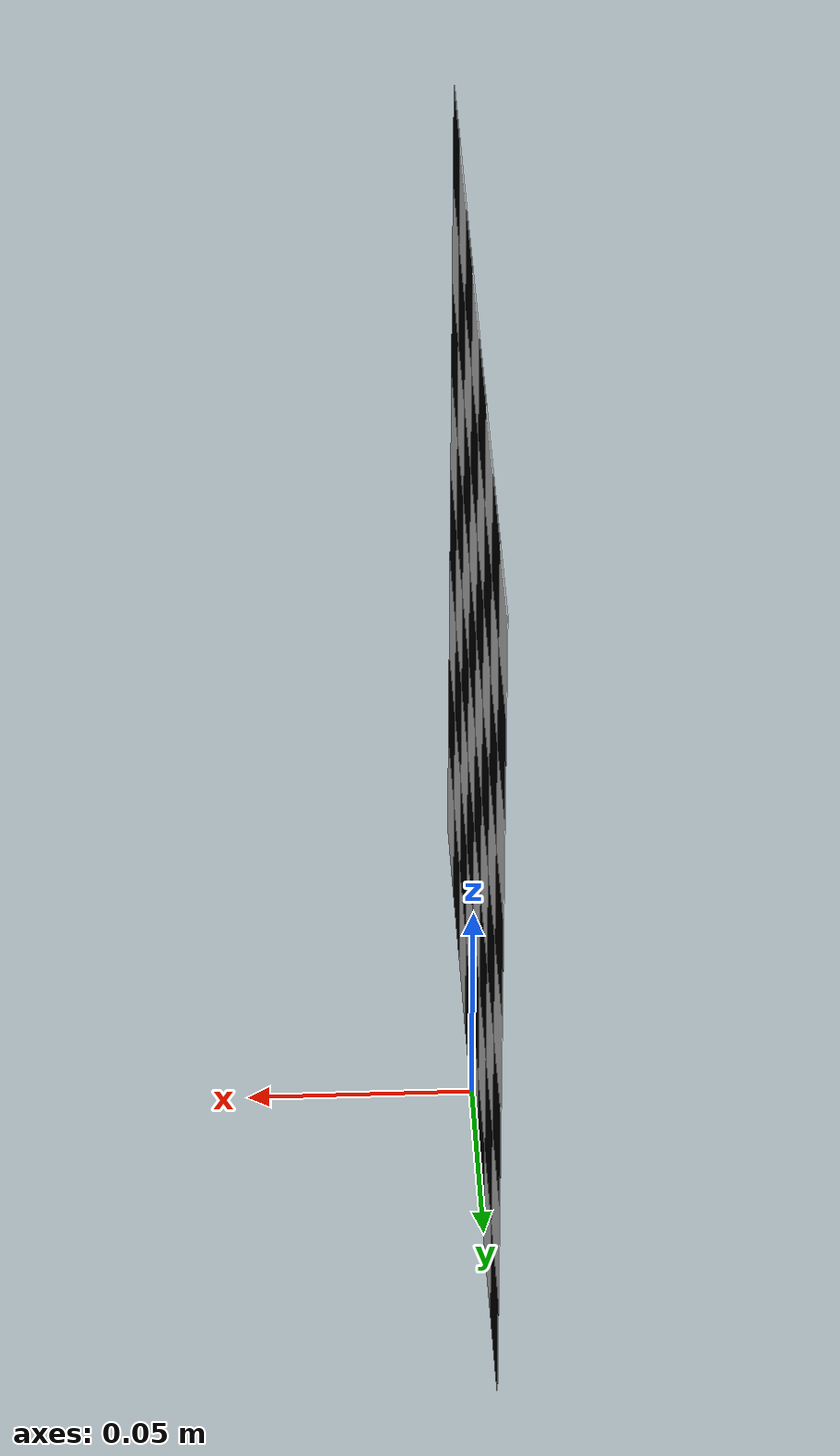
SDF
<?xml version="1.0"?>
<sdf version="1.4">
  <model name="checkerboard_8_8_0_0254">
  <pose>0 0 0.1 0.0 1.5708 0.0</pose>
  <static>true</static>
  <link name="checkerboard_8_8_0_0254_body">
      <visual name="checker_0_0">
        <pose>-0.08889999999999999 -0.08889999999999999 0 0 0 0</pose>
        <geometry>
          <box>
            <size>0.0254 0.0254 0.0002</size>
          </box>
        </geometry>
        <material>
          <ambient>0 0 0 1</ambient>
          <diffuse>0 0 0 1</diffuse>
          <specular>0 0 0 1</specular>
          <emissive>0 0 0 1</emissive>
        </material>
      </visual>
      <visual name="checker_0_1">
        <pose>-0.08889999999999999 -0.0635 0 0 0 0</pose>
        <geometry>
          <box>
            <size>0.0254 0.0254 0.0002</size>
          </box>
        </geometry>
        <material>
          <ambient>1 1 1 1</ambient>
          <diffuse>1 1 1 1</diffuse>
          <specular>1 1 1 1</specular>
          <emissive>1 1 1 1</emissive>
        </material>
      </visual>
      <visual name="checker_0_2">
        <pose>-0.08889999999999999 -0.038099999999999995 0 0 0 0</pose>
        <geometry>
          <box>
            <size>0.0254 0.0254 0.0002</size>
          </box>
        </geometry>
        <material>
          <ambient>0 0 0 1</ambient>
          <diffuse>0 0 0 1</diffuse>
          <specular>0 0 0 1</specular>
          <emissive>0 0 0 1</emissive>
        </material>
      </visual>
      <visual name="checker_0_3">
        <pose>-0.08889999999999999 -0.012700000000000003 0 0 0 0</pose>
        <geometry>
          <box>
            <size>0.0254 0.0254 0.0002</size>
          </box>
        </geometry>
        <material>
          <ambient>1 1 1 1</ambient>
          <diffuse>1 1 1 1</diffuse>
          <specular>1 1 1 1</specular>
          <emissive>1 1 1 1</emissive>
        </material>
      </visual>
      <visual name="checker_0_4">
        <pose>-0.08889999999999999 0.012700000000000003 0 0 0 0</pose>
        <geometry>
          <box>
            <size>0.0254 0.0254 0.0002</size>
          </box>
        </geometry>
        <material>
          <ambient>0 0 0 1</ambient>
          <diffuse>0 0 0 1</diffuse>
          <specular>0 0 0 1</specular>
          <emissive>0 0 0 1</emissive>
        </material>
      </visual>
      <visual name="checker_0_5">
        <pose>-0.08889999999999999 0.038099999999999995 0 0 0 0</pose>
        <geometry>
          <box>
            <size>0.0254 0.0254 0.0002</size>
          </box>
        </geometry>
        <material>
          <ambient>1 1 1 1</ambient>
          <diffuse>1 1 1 1</diffuse>
          <specular>1 1 1 1</specular>
          <emissive>1 1 1 1</emissive>
        </material>
      </visual>
      <visual name="checker_0_6">
        <pose>-0.08889999999999999 0.06349999999999997 0 0 0 0</pose>
        <geometry>
          <box>
            <size>0.0254 0.0254 0.0002</size>
          </box>
        </geometry>
        <material>
          <ambient>0 0 0 1</ambient>
          <diffuse>0 0 0 1</diffuse>
          <specular>0 0 0 1</specular>
          <emissive>0 0 0 1</emissive>
        </material>
      </visual>
      <visual name="checker_0_7">
        <pose>-0.08889999999999999 0.08889999999999998 0 0 0 0</pose>
        <geometry>
          <box>
            <size>0.0254 0.0254 0.0002</size>
          </box>
        </geometry>
        <material>
          <ambient>1 1 1 1</ambient>
          <diffuse>1 1 1 1</diffuse>
          <specular>1 1 1 1</specular>
          <emissive>1 1 1 1</emissive>
        </material>
      </visual>
      <visual name="checker_1_0">
        <pose>-0.0635 -0.08889999999999999 0 0 0 0</pose>
        <geometry>
          <box>
            <size>0.0254 0.0254 0.0002</size>
          </box>
        </geometry>
        <material>
          <ambient>1 1 1 1</ambient>
          <diffuse>1 1 1 1</diffuse>
          <specular>1 1 1 1</specular>
          <emissive>1 1 1 1</emissive>
        </material>
      </visual>
      <visual name="checker_1_1">
        <pose>-0.0635 -0.0635 0 0 0 0</pose>
        <geometry>
          <box>
            <size>0.0254 0.0254 0.0002</size>
          </box>
        </geometry>
        <material>
          <ambient>0 0 0 1</ambient>
          <diffuse>0 0 0 1</diffuse>
          <specular>0 0 0 1</specular>
          <emissive>0 0 0 1</emissive>
        </material>
      </visual>
      <visual name="checker_1_2">
        <pose>-0.0635 -0.038099999999999995 0 0 0 0</pose>
        <geometry>
          <box>
            <size>0.0254 0.0254 0.0002</size>
          </box>
        </geometry>
        <material>
          <ambient>1 1 1 1</ambient>
          <diffuse>1 1 1 1</diffuse>
          <specular>1 1 1 1</specular>
          <emissive>1 1 1 1</emissive>
        </material>
      </visual>
      <visual name="checker_1_3">
        <pose>-0.0635 -0.012700000000000003 0 0 0 0</pose>
        <geometry>
          <box>
            <size>0.0254 0.0254 0.0002</size>
          </box>
        </geometry>
        <material>
          <ambient>0 0 0 1</ambient>
          <diffuse>0 0 0 1</diffuse>
          <specular>0 0 0 1</specular>
          <emissive>0 0 0 1</emissive>
        </material>
      </visual>
      <visual name="checker_1_4">
        <pose>-0.0635 0.012700000000000003 0 0 0 0</pose>
        <geometry>
          <box>
            <size>0.0254 0.0254 0.0002</size>
          </box>
        </geometry>
        <material>
          <ambient>1 1 1 1</ambient>
          <diffuse>1 1 1 1</diffuse>
          <specular>1 1 1 1</specular>
          <emissive>1 1 1 1</emissive>
        </material>
      </visual>
      <visual name="checker_1_5">
        <pose>-0.0635 0.038099999999999995 0 0 0 0</pose>
        <geometry>
          <box>
            <size>0.0254 0.0254 0.0002</size>
          </box>
        </geometry>
        <material>
          <ambient>0 0 0 1</ambient>
          <diffuse>0 0 0 1</diffuse>
          <specular>0 0 0 1</specular>
          <emissive>0 0 0 1</emissive>
        </material>
      </visual>
      <visual name="checker_1_6">
        <pose>-0.0635 0.06349999999999997 0 0 0 0</pose>
        <geometry>
          <box>
            <size>0.0254 0.0254 0.0002</size>
          </box>
        </geometry>
        <material>
          <ambient>1 1 1 1</ambient>
          <diffuse>1 1 1 1</diffuse>
          <specular>1 1 1 1</specular>
          <emissive>1 1 1 1</emissive>
        </material>
      </visual>
      <visual name="checker_1_7">
        <pose>-0.0635 0.08889999999999998 0 0 0 0</pose>
        <geometry>
          <box>
            <size>0.0254 0.0254 0.0002</size>
          </box>
        </geometry>
        <material>
          <ambient>0 0 0 1</ambient>
          <diffuse>0 0 0 1</diffuse>
          <specular>0 0 0 1</specular>
          <emissive>0 0 0 1</emissive>
        </material>
      </visual>
      <visual name="checker_2_0">
        <pose>-0.038099999999999995 -0.08889999999999999 0 0 0 0</pose>
        <geometry>
          <box>
            <size>0.0254 0.0254 0.0002</size>
          </box>
        </geometry>
        <material>
          <ambient>0 0 0 1</ambient>
          <diffuse>0 0 0 1</diffuse>
          <specular>0 0 0 1</specular>
          <emissive>0 0 0 1</emissive>
        </material>
      </visual>
      <visual name="checker_2_1">
        <pose>-0.038099999999999995 -0.0635 0 0 0 0</pose>
        <geometry>
          <box>
            <size>0.0254 0.0254 0.0002</size>
          </box>
        </geometry>
        <material>
          <ambient>1 1 1 1</ambient>
          <diffuse>1 1 1 1</diffuse>
          <specular>1 1 1 1</specular>
          <emissive>1 1 1 1</emissive>
        </material>
      </visual>
      <visual name="checker_2_2">
        <pose>-0.038099999999999995 -0.038099999999999995 0 0 0 0</pose>
        <geometry>
          <box>
            <size>0.0254 0.0254 0.0002</size>
          </box>
        </geometry>
        <material>
          <ambient>0 0 0 1</ambient>
          <diffuse>0 0 0 1</diffuse>
          <specular>0 0 0 1</specular>
          <emissive>0 0 0 1</emissive>
        </material>
      </visual>
      <visual name="checker_2_3">
        <pose>-0.038099999999999995 -0.012700000000000003 0 0 0 0</pose>
        <geometry>
          <box>
            <size>0.0254 0.0254 0.0002</size>
          </box>
        </geometry>
        <material>
          <ambient>1 1 1 1</ambient>
          <diffuse>1 1 1 1</diffuse>
          <specular>1 1 1 1</specular>
          <emissive>1 1 1 1</emissive>
        </material>
      </visual>
      <visual name="checker_2_4">
        <pose>-0.038099999999999995 0.012700000000000003 0 0 0 0</pose>
        <geometry>
          <box>
            <size>0.0254 0.0254 0.0002</size>
          </box>
        </geometry>
        <material>
          <ambient>0 0 0 1</ambient>
          <diffuse>0 0 0 1</diffuse>
          <specular>0 0 0 1</specular>
          <emissive>0 0 0 1</emissive>
        </material>
      </visual>
      <visual name="checker_2_5">
        <pose>-0.038099999999999995 0.038099999999999995 0 0 0 0</pose>
        <geometry>
          <box>
            <size>0.0254 0.0254 0.0002</size>
          </box>
        </geometry>
        <material>
          <ambient>1 1 1 1</ambient>
          <diffuse>1 1 1 1</diffuse>
          <specular>1 1 1 1</specular>
          <emissive>1 1 1 1</emissive>
        </material>
      </visual>
      <visual name="checker_2_6">
        <pose>-0.038099999999999995 0.06349999999999997 0 0 0 0</pose>
        <geometry>
          <box>
            <size>0.0254 0.0254 0.0002</size>
          </box>
        </geometry>
        <material>
          <ambient>0 0 0 1</ambient>
          <diffuse>0 0 0 1</diffuse>
          <specular>0 0 0 1</specular>
          <emissive>0 0 0 1</emissive>
        </material>
      </visual>
      <visual name="checker_2_7">
        <pose>-0.038099999999999995 0.08889999999999998 0 0 0 0</pose>
        <geometry>
          <box>
            <size>0.0254 0.0254 0.0002</size>
          </box>
        </geometry>
        <material>
          <ambient>1 1 1 1</ambient>
          <diffuse>1 1 1 1</diffuse>
          <specular>1 1 1 1</specular>
          <emissive>1 1 1 1</emissive>
        </material>
      </visual>
      <visual name="checker_3_0">
        <pose>-0.012700000000000003 -0.08889999999999999 0 0 0 0</pose>
        <geometry>
          <box>
            <size>0.0254 0.0254 0.0002</size>
          </box>
        </geometry>
        <material>
          <ambient>1 1 1 1</ambient>
          <diffuse>1 1 1 1</diffuse>
          <specular>1 1 1 1</specular>
          <emissive>1 1 1 1</emissive>
        </material>
      </visual>
      <visual name="checker_3_1">
        <pose>-0.012700000000000003 -0.0635 0 0 0 0</pose>
        <geometry>
          <box>
            <size>0.0254 0.0254 0.0002</size>
          </box>
        </geometry>
        <material>
          <ambient>0 0 0 1</ambient>
          <diffuse>0 0 0 1</diffuse>
          <specular>0 0 0 1</specular>
          <emissive>0 0 0 1</emissive>
        </material>
      </visual>
      <visual name="checker_3_2">
        <pose>-0.012700000000000003 -0.038099999999999995 0 0 0 0</pose>
        <geometry>
          <box>
            <size>0.0254 0.0254 0.0002</size>
          </box>
        </geometry>
        <material>
          <ambient>1 1 1 1</ambient>
          <diffuse>1 1 1 1</diffuse>
          <specular>1 1 1 1</specular>
          <emissive>1 1 1 1</emissive>
        </material>
      </visual>
      <visual name="checker_3_3">
        <pose>-0.012700000000000003 -0.012700000000000003 0 0 0 0</pose>
        <geometry>
          <box>
            <size>0.0254 0.0254 0.0002</size>
          </box>
        </geometry>
        <material>
          <ambient>0 0 0 1</ambient>
          <diffuse>0 0 0 1</diffuse>
          <specular>0 0 0 1</specular>
          <emissive>0 0 0 1</emissive>
        </material>
      </visual>
      <visual name="checker_3_4">
        <pose>-0.012700000000000003 0.012700000000000003 0 0 0 0</pose>
        <geometry>
          <box>
            <size>0.0254 0.0254 0.0002</size>
          </box>
        </geometry>
        <material>
          <ambient>1 1 1 1</ambient>
          <diffuse>1 1 1 1</diffuse>
          <specular>1 1 1 1</specular>
          <emissive>1 1 1 1</emissive>
        </material>
      </visual>
      <visual name="checker_3_5">
        <pose>-0.012700000000000003 0.038099999999999995 0 0 0 0</pose>
        <geometry>
          <box>
            <size>0.0254 0.0254 0.0002</size>
          </box>
        </geometry>
        <material>
          <ambient>0 0 0 1</ambient>
          <diffuse>0 0 0 1</diffuse>
          <specular>0 0 0 1</specular>
          <emissive>0 0 0 1</emissive>
        </material>
      </visual>
      <visual name="checker_3_6">
        <pose>-0.012700000000000003 0.06349999999999997 0 0 0 0</pose>
        <geometry>
          <box>
            <size>0.0254 0.0254 0.0002</size>
          </box>
        </geometry>
        <material>
          <ambient>1 1 1 1</ambient>
          <diffuse>1 1 1 1</diffuse>
          <specular>1 1 1 1</specular>
          <emissive>1 1 1 1</emissive>
        </material>
      </visual>
      <visual name="checker_3_7">
        <pose>-0.012700000000000003 0.08889999999999998 0 0 0 0</pose>
        <geometry>
          <box>
            <size>0.0254 0.0254 0.0002</size>
          </box>
        </geometry>
        <material>
          <ambient>0 0 0 1</ambient>
          <diffuse>0 0 0 1</diffuse>
          <specular>0 0 0 1</specular>
          <emissive>0 0 0 1</emissive>
        </material>
      </visual>
      <visual name="checker_4_0">
        <pose>0.012700000000000003 -0.08889999999999999 0 0 0 0</pose>
        <geometry>
          <box>
            <size>0.0254 0.0254 0.0002</size>
          </box>
        </geometry>
        <material>
          <ambient>0 0 0 1</ambient>
          <diffuse>0 0 0 1</diffuse>
          <specular>0 0 0 1</specular>
          <emissive>0 0 0 1</emissive>
        </material>
      </visual>
      <visual name="checker_4_1">
        <pose>0.012700000000000003 -0.0635 0 0 0 0</pose>
        <geometry>
          <box>
            <size>0.0254 0.0254 0.0002</size>
          </box>
        </geometry>
        <material>
          <ambient>1 1 1 1</ambient>
          <diffuse>1 1 1 1</diffuse>
          <specular>1 1 1 1</specular>
          <emissive>1 1 1 1</emissive>
        </material>
      </visual>
      <visual name="checker_4_2">
        <pose>0.012700000000000003 -0.038099999999999995 0 0 0 0</pose>
        <geometry>
          <box>
            <size>0.0254 0.0254 0.0002</size>
          </box>
        </geometry>
        <material>
          <ambient>0 0 0 1</ambient>
          <diffuse>0 0 0 1</diffuse>
          <specular>0 0 0 1</specular>
          <emissive>0 0 0 1</emissive>
        </material>
      </visual>
      <visual name="checker_4_3">
        <pose>0.012700000000000003 -0.012700000000000003 0 0 0 0</pose>
        <geometry>
          <box>
            <size>0.0254 0.0254 0.0002</size>
          </box>
        </geometry>
        <material>
          <ambient>1 1 1 1</ambient>
          <diffuse>1 1 1 1</diffuse>
          <specular>1 1 1 1</specular>
          <emissive>1 1 1 1</emissive>
        </material>
      </visual>
      <visual name="checker_4_4">
        <pose>0.012700000000000003 0.012700000000000003 0 0 0 0</pose>
        <geometry>
          <box>
            <size>0.0254 0.0254 0.0002</size>
          </box>
        </geometry>
        <material>
          <ambient>0 0 0 1</ambient>
          <diffuse>0 0 0 1</diffuse>
          <specular>0 0 0 1</specular>
          <emissive>0 0 0 1</emissive>
        </material>
      </visual>
      <visual name="checker_4_5">
        <pose>0.012700000000000003 0.038099999999999995 0 0 0 0</pose>
        <geometry>
          <box>
            <size>0.0254 0.0254 0.0002</size>
          </box>
        </geometry>
        <material>
          <ambient>1 1 1 1</ambient>
          <diffuse>1 1 1 1</diffuse>
          <specular>1 1 1 1</specular>
          <emissive>1 1 1 1</emissive>
        </material>
      </visual>
      <visual name="checker_4_6">
        <pose>0.012700000000000003 0.06349999999999997 0 0 0 0</pose>
        <geometry>
          <box>
            <size>0.0254 0.0254 0.0002</size>
          </box>
        </geometry>
        <material>
          <ambient>0 0 0 1</ambient>
          <diffuse>0 0 0 1</diffuse>
          <specular>0 0 0 1</specular>
          <emissive>0 0 0 1</emissive>
        </material>
      </visual>
      <visual name="checker_4_7">
        <pose>0.012700000000000003 0.08889999999999998 0 0 0 0</pose>
        <geometry>
          <box>
            <size>0.0254 0.0254 0.0002</size>
          </box>
        </geometry>
        <material>
          <ambient>1 1 1 1</ambient>
          <diffuse>1 1 1 1</diffuse>
          <specular>1 1 1 1</specular>
          <emissive>1 1 1 1</emissive>
        </material>
      </visual>
      <visual name="checker_5_0">
        <pose>0.038099999999999995 -0.08889999999999999 0 0 0 0</pose>
        <geometry>
          <box>
            <size>0.0254 0.0254 0.0002</size>
          </box>
        </geometry>
        <material>
          <ambient>1 1 1 1</ambient>
          <diffuse>1 1 1 1</diffuse>
          <specular>1 1 1 1</specular>
          <emissive>1 1 1 1</emissive>
        </material>
      </visual>
      <visual name="checker_5_1">
        <pose>0.038099999999999995 -0.0635 0 0 0 0</pose>
        <geometry>
          <box>
            <size>0.0254 0.0254 0.0002</size>
          </box>
        </geometry>
        <material>
          <ambient>0 0 0 1</ambient>
          <diffuse>0 0 0 1</diffuse>
          <specular>0 0 0 1</specular>
          <emissive>0 0 0 1</emissive>
        </material>
      </visual>
      <visual name="checker_5_2">
        <pose>0.038099999999999995 -0.038099999999999995 0 0 0 0</pose>
        <geometry>
          <box>
            <size>0.0254 0.0254 0.0002</size>
          </box>
        </geometry>
        <material>
          <ambient>1 1 1 1</ambient>
          <diffuse>1 1 1 1</diffuse>
          <specular>1 1 1 1</specular>
          <emissive>1 1 1 1</emissive>
        </material>
      </visual>
      <visual name="checker_5_3">
        <pose>0.038099999999999995 -0.012700000000000003 0 0 0 0</pose>
        <geometry>
          <box>
            <size>0.0254 0.0254 0.0002</size>
          </box>
        </geometry>
        <material>
          <ambient>0 0 0 1</ambient>
          <diffuse>0 0 0 1</diffuse>
          <specular>0 0 0 1</specular>
          <emissive>0 0 0 1</emissive>
        </material>
      </visual>
      <visual name="checker_5_4">
        <pose>0.038099999999999995 0.012700000000000003 0 0 0 0</pose>
        <geometry>
          <box>
            <size>0.0254 0.0254 0.0002</size>
          </box>
        </geometry>
        <material>
          <ambient>1 1 1 1</ambient>
          <diffuse>1 1 1 1</diffuse>
          <specular>1 1 1 1</specular>
          <emissive>1 1 1 1</emissive>
        </material>
      </visual>
      <visual name="checker_5_5">
        <pose>0.038099999999999995 0.038099999999999995 0 0 0 0</pose>
        <geometry>
          <box>
            <size>0.0254 0.0254 0.0002</size>
          </box>
        </geometry>
        <material>
          <ambient>0 0 0 1</ambient>
          <diffuse>0 0 0 1</diffuse>
          <specular>0 0 0 1</specular>
          <emissive>0 0 0 1</emissive>
        </material>
      </visual>
      <visual name="checker_5_6">
        <pose>0.038099999999999995 0.06349999999999997 0 0 0 0</pose>
        <geometry>
          <box>
            <size>0.0254 0.0254 0.0002</size>
          </box>
        </geometry>
        <material>
          <ambient>1 1 1 1</ambient>
          <diffuse>1 1 1 1</diffuse>
          <specular>1 1 1 1</specular>
          <emissive>1 1 1 1</emissive>
        </material>
      </visual>
      <visual name="checker_5_7">
        <pose>0.038099999999999995 0.08889999999999998 0 0 0 0</pose>
        <geometry>
          <box>
            <size>0.0254 0.0254 0.0002</size>
          </box>
        </geometry>
        <material>
          <ambient>0 0 0 1</ambient>
          <diffuse>0 0 0 1</diffuse>
          <specular>0 0 0 1</specular>
          <emissive>0 0 0 1</emissive>
        </material>
      </visual>
      <visual name="checker_6_0">
        <pose>0.06349999999999997 -0.08889999999999999 0 0 0 0</pose>
        <geometry>
          <box>
            <size>0.0254 0.0254 0.0002</size>
          </box>
        </geometry>
        <material>
          <ambient>0 0 0 1</ambient>
          <diffuse>0 0 0 1</diffuse>
          <specular>0 0 0 1</specular>
          <emissive>0 0 0 1</emissive>
        </material>
      </visual>
      <visual name="checker_6_1">
        <pose>0.06349999999999997 -0.0635 0 0 0 0</pose>
        <geometry>
          <box>
            <size>0.0254 0.0254 0.0002</size>
          </box>
        </geometry>
        <material>
          <ambient>1 1 1 1</ambient>
          <diffuse>1 1 1 1</diffuse>
          <specular>1 1 1 1</specular>
          <emissive>1 1 1 1</emissive>
        </material>
      </visual>
      <visual name="checker_6_2">
        <pose>0.06349999999999997 -0.038099999999999995 0 0 0 0</pose>
        <geometry>
          <box>
            <size>0.0254 0.0254 0.0002</size>
          </box>
        </geometry>
        <material>
          <ambient>0 0 0 1</ambient>
          <diffuse>0 0 0 1</diffuse>
          <specular>0 0 0 1</specular>
          <emissive>0 0 0 1</emissive>
        </material>
      </visual>
      <visual name="checker_6_3">
        <pose>0.06349999999999997 -0.012700000000000003 0 0 0 0</pose>
        <geometry>
          <box>
            <size>0.0254 0.0254 0.0002</size>
          </box>
        </geometry>
        <material>
          <ambient>1 1 1 1</ambient>
          <diffuse>1 1 1 1</diffuse>
          <specular>1 1 1 1</specular>
          <emissive>1 1 1 1</emissive>
        </material>
      </visual>
      <visual name="checker_6_4">
        <pose>0.06349999999999997 0.012700000000000003 0 0 0 0</pose>
        <geometry>
          <box>
            <size>0.0254 0.0254 0.0002</size>
          </box>
        </geometry>
        <material>
          <ambient>0 0 0 1</ambient>
          <diffuse>0 0 0 1</diffuse>
          <specular>0 0 0 1</specular>
          <emissive>0 0 0 1</emissive>
        </material>
      </visual>
      <visual name="checker_6_5">
        <pose>0.06349999999999997 0.038099999999999995 0 0 0 0</pose>
        <geometry>
          <box>
            <size>0.0254 0.0254 0.0002</size>
          </box>
        </geometry>
        <material>
          <ambient>1 1 1 1</ambient>
          <diffuse>1 1 1 1</diffuse>
          <specular>1 1 1 1</specular>
          <emissive>1 1 1 1</emissive>
        </material>
      </visual>
      <visual name="checker_6_6">
        <pose>0.06349999999999997 0.06349999999999997 0 0 0 0</pose>
        <geometry>
          <box>
            <size>0.0254 0.0254 0.0002</size>
          </box>
        </geometry>
        <material>
          <ambient>0 0 0 1</ambient>
          <diffuse>0 0 0 1</diffuse>
          <specular>0 0 0 1</specular>
          <emissive>0 0 0 1</emissive>
        </material>
      </visual>
      <visual name="checker_6_7">
        <pose>0.06349999999999997 0.08889999999999998 0 0 0 0</pose>
        <geometry>
          <box>
            <size>0.0254 0.0254 0.0002</size>
          </box>
        </geometry>
        <material>
          <ambient>1 1 1 1</ambient>
          <diffuse>1 1 1 1</diffuse>
          <specular>1 1 1 1</specular>
          <emissive>1 1 1 1</emissive>
        </material>
      </visual>
      <visual name="checker_7_0">
        <pose>0.08889999999999998 -0.08889999999999999 0 0 0 0</pose>
        <geometry>
          <box>
            <size>0.0254 0.0254 0.0002</size>
          </box>
        </geometry>
        <material>
          <ambient>1 1 1 1</ambient>
          <diffuse>1 1 1 1</diffuse>
          <specular>1 1 1 1</specular>
          <emissive>1 1 1 1</emissive>
        </material>
      </visual>
      <visual name="checker_7_1">
        <pose>0.08889999999999998 -0.0635 0 0 0 0</pose>
        <geometry>
          <box>
            <size>0.0254 0.0254 0.0002</size>
          </box>
        </geometry>
        <material>
          <ambient>0 0 0 1</ambient>
          <diffuse>0 0 0 1</diffuse>
          <specular>0 0 0 1</specular>
          <emissive>0 0 0 1</emissive>
        </material>
      </visual>
      <visual name="checker_7_2">
        <pose>0.08889999999999998 -0.038099999999999995 0 0 0 0</pose>
        <geometry>
          <box>
            <size>0.0254 0.0254 0.0002</size>
          </box>
        </geometry>
        <material>
          <ambient>1 1 1 1</ambient>
          <diffuse>1 1 1 1</diffuse>
          <specular>1 1 1 1</specular>
          <emissive>1 1 1 1</emissive>
        </material>
      </visual>
      <visual name="checker_7_3">
        <pose>0.08889999999999998 -0.012700000000000003 0 0 0 0</pose>
        <geometry>
          <box>
            <size>0.0254 0.0254 0.0002</size>
          </box>
        </geometry>
        <material>
          <ambient>0 0 0 1</ambient>
          <diffuse>0 0 0 1</diffuse>
          <specular>0 0 0 1</specular>
          <emissive>0 0 0 1</emissive>
        </material>
      </visual>
      <visual name="checker_7_4">
        <pose>0.08889999999999998 0.012700000000000003 0 0 0 0</pose>
        <geometry>
          <box>
            <size>0.0254 0.0254 0.0002</size>
          </box>
        </geometry>
        <material>
          <ambient>1 1 1 1</ambient>
          <diffuse>1 1 1 1</diffuse>
          <specular>1 1 1 1</specular>
          <emissive>1 1 1 1</emissive>
        </material>
      </visual>
      <visual name="checker_7_5">
        <pose>0.08889999999999998 0.038099999999999995 0 0 0 0</pose>
        <geometry>
          <box>
            <size>0.0254 0.0254 0.0002</size>
          </box>
        </geometry>
        <material>
          <ambient>0 0 0 1</ambient>
          <diffuse>0 0 0 1</diffuse>
          <specular>0 0 0 1</specular>
          <emissive>0 0 0 1</emissive>
        </material>
      </visual>
      <visual name="checker_7_6">
        <pose>0.08889999999999998 0.06349999999999997 0 0 0 0</pose>
        <geometry>
          <box>
            <size>0.0254 0.0254 0.0002</size>
          </box>
        </geometry>
        <material>
          <ambient>1 1 1 1</ambient>
          <diffuse>1 1 1 1</diffuse>
          <specular>1 1 1 1</specular>
          <emissive>1 1 1 1</emissive>
        </material>
      </visual>
      <visual name="checker_7_7">
        <pose>0.08889999999999998 0.08889999999999998 0 0 0 0</pose>
        <geometry>
          <box>
            <size>0.0254 0.0254 0.0002</size>
          </box>
        </geometry>
        <material>
          <ambient>0 0 0 1</ambient>
          <diffuse>0 0 0 1</diffuse>
          <specular>0 0 0 1</specular>
          <emissive>0 0 0 1</emissive>
        </material>
      </visual>
    </link>
  </model>
</sdf>
